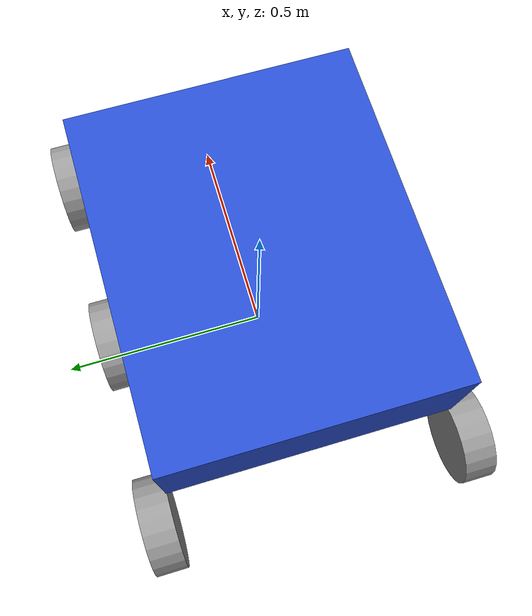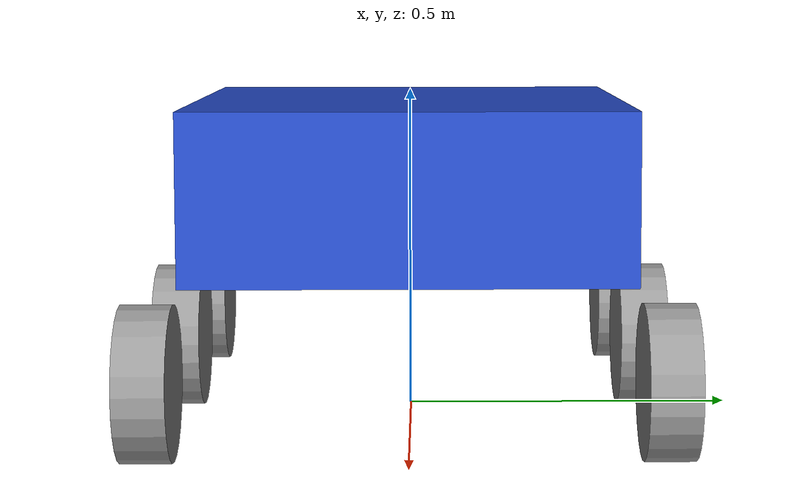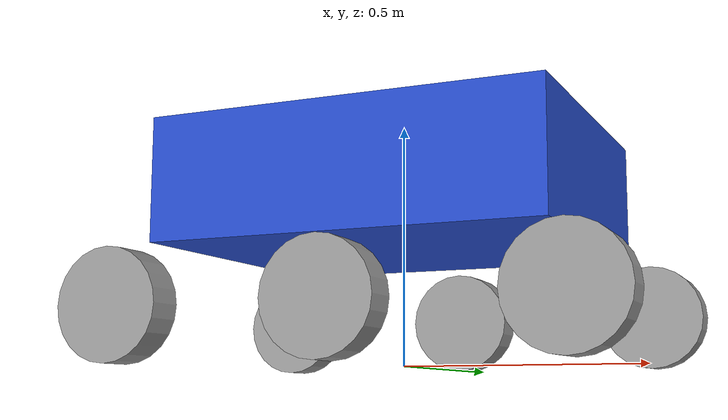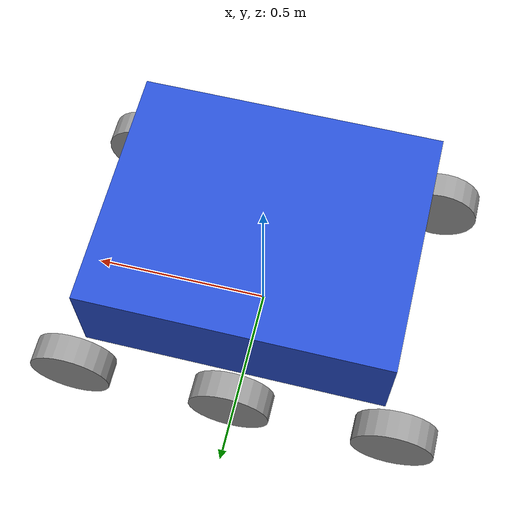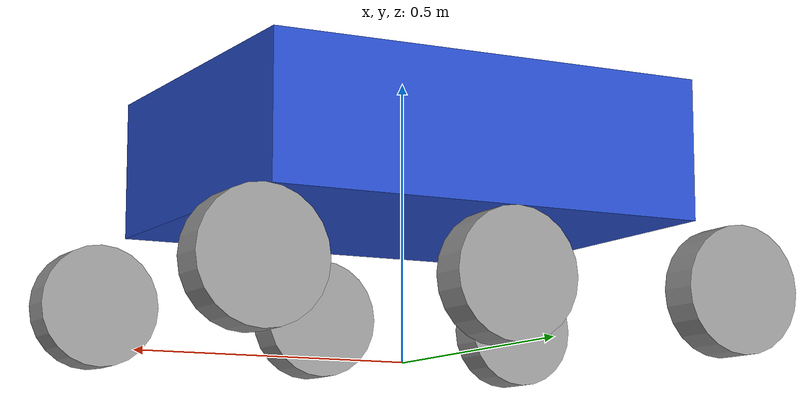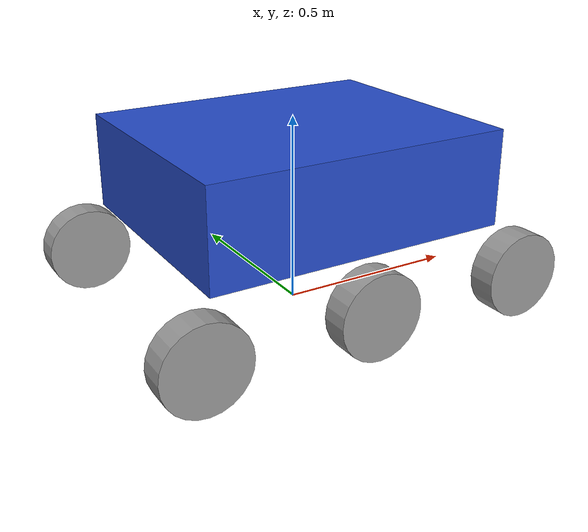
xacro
<?xml version="1.0"?>
<robot xmlns:xacro="http://www.ros.org/wiki/xacro">

    <xacro:property name="base_length" value="0.8" />
    <xacro:property name="base_width" value="0.654" />
    <xacro:property name="base_height" value="0.25" />
    <xacro:property name="wheel_radius" value="0.111" />
    <xacro:property name="wheel_length" value="0.073" />
    <xacro:property name="wheel_dist" value="0.444" />

    <link name="base_footprint" />

    <link name="base_link">
        <visual>
            <geometry>
                <box size="${base_length} ${base_width} ${base_height}" />
            </geometry>
            <origin xyz="0 0 0.25" rpy="0 0 0" />
            <material name="blue" />
        </visual>
    </link>

    <xacro:macro name="wheel_link" params="prefix x y">
        <link name="${prefix}_wheel_link">
            <visual>
                <geometry>
                    <cylinder radius="${wheel_radius}" length="${wheel_length}" />
                </geometry>
                <origin xyz="0 0 0" rpy="${pi / 2.0} 0 0" />
                <material name="grey" />
            </visual>
        </link>
        <joint name="base_${prefix}_wheel_joint" type="continuous">
            <parent link="base_link" />
            <child link="${prefix}_wheel_link" />
            <origin xyz="${x} ${y} 0" rpy="0 0 0" />
            <axis xyz="0 1 0" />
        </joint>
    </xacro:macro>

    <!-- Positive x is the front; positive y is the left side. -->
    <xacro:wheel_link prefix="front_right" x="${wheel_dist}" y="${-(base_width + wheel_length) / 2.0}" />
    <xacro:wheel_link prefix="middle_right" x="0" y="${-(base_width + wheel_length) / 2.0}" />
    <xacro:wheel_link prefix="rear_right" x="${-wheel_dist}" y="${-(base_width + wheel_length) / 2.0}" />
    <xacro:wheel_link prefix="front_left" x="${wheel_dist}" y="${(base_width + wheel_length) / 2.0}" />
    <xacro:wheel_link prefix="middle_left" x="0" y="${(base_width + wheel_length) / 2.0}" />
    <xacro:wheel_link prefix="rear_left" x="${-wheel_dist}" y="${(base_width + wheel_length) / 2.0}" />

    <joint name="base_joint" type="fixed">
        <parent link="base_footprint" />
        <child link="base_link" />
        <origin xyz="0 0 ${wheel_radius}" rpy="0 0 0"/>
    </joint>

</robot>
